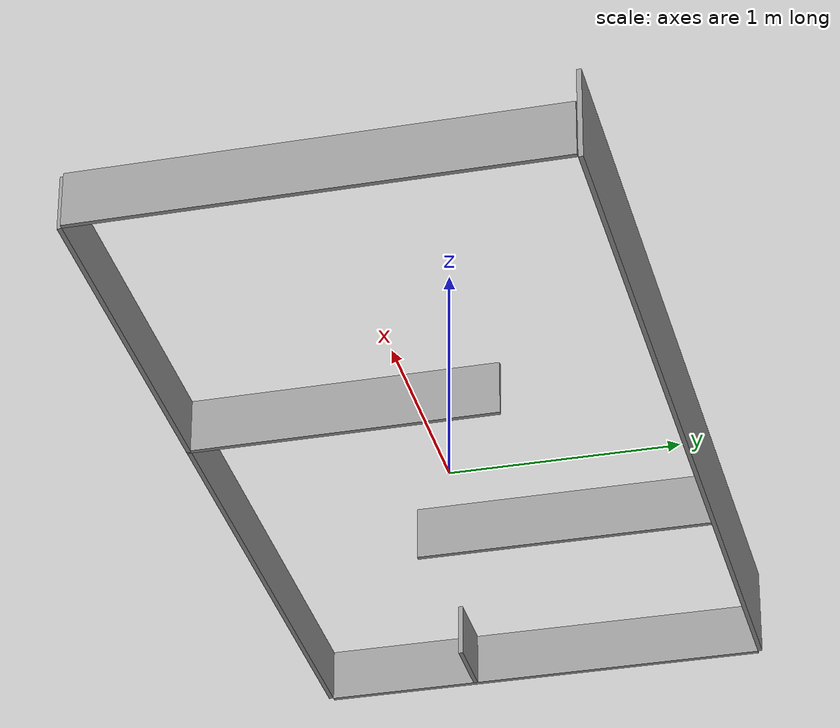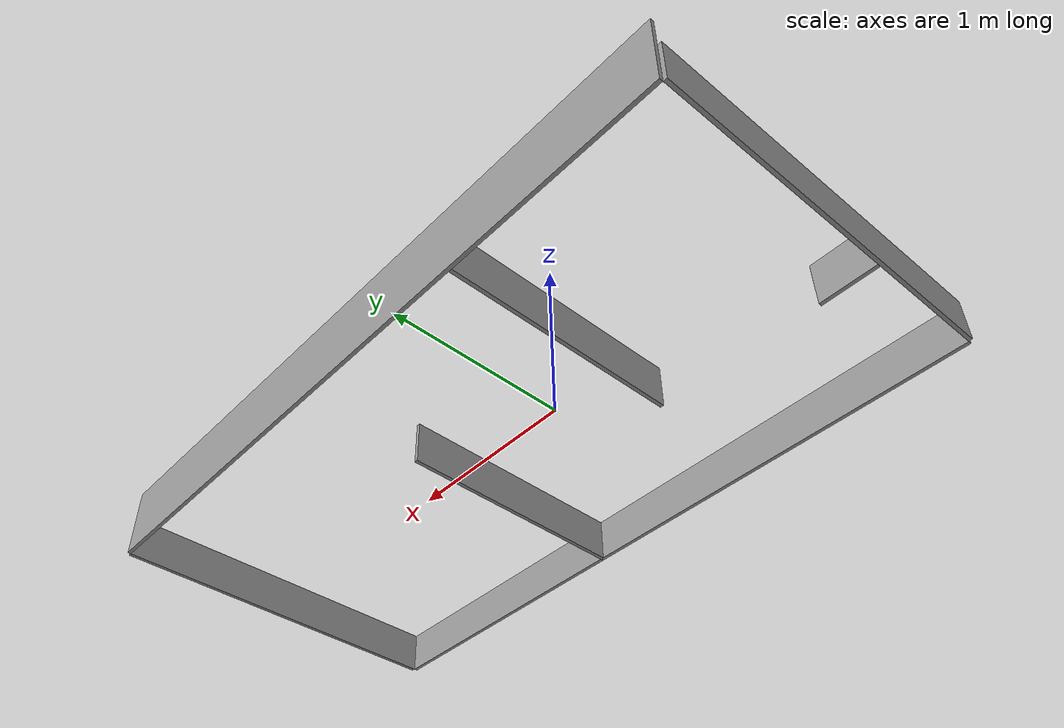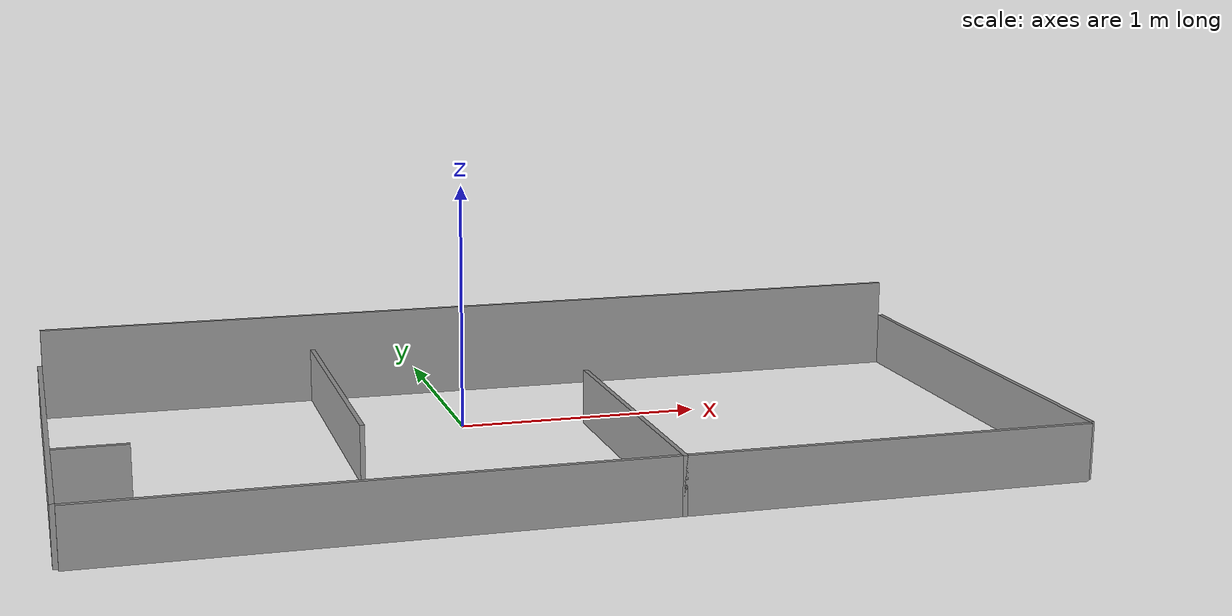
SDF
<?xml version='1.0'?>
<sdf version='1.6'>
  <model name='performance-environment'>
    <link name='link_2'>
      <pose frame=''>0.335714 -0.964286 -0.011429 0 -0 0</pose>
      <inertial>
        <mass>1</mass>
        <inertia>
          <ixx>0.166667</ixx>
          <ixy>0</ixy>
          <ixz>0</ixz>
          <iyy>0.166667</iyy>
          <iyz>0</iyz>
          <izz>0.166667</izz>
        </inertia>
        <pose frame=''>0 0 0 0 -0 0</pose>
      </inertial>
      <gravity>1</gravity>
      <self_collide>0</self_collide>
      <kinematic>0</kinematic>
      <visual name='visual'>
        <pose frame=''>0 0 0 0 -0 0</pose>
        <geometry>
          <box>
            <size>4 0.02 0.24</size>
          </box>
        </geometry>
        <material>
          <lighting>1</lighting>
          <script>
            <uri>file://media/materials/scripts/gazebo.material</uri>
            <name>Gazebo/Grey</name>
          </script>
          <shader type='pixel'>
            <normal_map>__default__</normal_map>
          </shader>
          <ambient>0.3 0.3 0.3 1</ambient>
          <diffuse>0.7 0.7 0.7 1</diffuse>
          <specular>0.01 0.01 0.01 1</specular>
          <emissive>0 0 0 1</emissive>
        </material>
        <transparency>0</transparency>
        <cast_shadows>1</cast_shadows>
      </visual>
      <collision name='collision'>
        <laser_retro>0</laser_retro>
        <max_contacts>10</max_contacts>
        <pose frame=''>0 0 0 0 -0 0</pose>
        <geometry>
          <box>
            <size>4 0.02 0.24</size>
          </box>
        </geometry>
        <surface>
          <friction>
            <ode>
              <mu>1</mu>
              <mu2>1</mu2>
              <fdir1>0 0 0</fdir1>
              <slip1>0</slip1>
              <slip2>0</slip2>
            </ode>
            <torsional>
              <coefficient>1</coefficient>
              <patch_radius>0</patch_radius>
              <surface_radius>0</surface_radius>
              <use_patch_radius>1</use_patch_radius>
              <ode>
                <slip>0</slip>
              </ode>
            </torsional>
          </friction>
          <bounce>
            <restitution_coefficient>0</restitution_coefficient>
            <threshold>1e+06</threshold>
          </bounce>
          <contact>
            <collide_without_contact>0</collide_without_contact>
            <collide_without_contact_bitmask>1</collide_without_contact_bitmask>
            <collide_bitmask>1</collide_bitmask>
            <ode>
              <soft_cfm>0</soft_cfm>
              <soft_erp>0.2</soft_erp>
              <kp>1e+13</kp>
              <kd>1</kd>
              <max_vel>0.01</max_vel>
              <min_depth>0</min_depth>
            </ode>
            <bullet>
              <split_impulse>1</split_impulse>
              <split_impulse_penetration_threshold>-0.01</split_impulse_penetration_threshold>
              <soft_cfm>0</soft_cfm>
              <soft_erp>0.2</soft_erp>
              <kp>1e+13</kp>
              <kd>1</kd>
            </bullet>
          </contact>
        </surface>
      </collision>
    </link>
    <link name='link_2_clone'>
      <pose frame=''>0.335714 1.05571 0.068571 0 -0 0</pose>
      <inertial>
        <mass>1</mass>
        <inertia>
          <ixx>0.166667</ixx>
          <ixy>0</ixy>
          <ixz>0</ixz>
          <iyy>0.166667</iyy>
          <iyz>0</iyz>
          <izz>0.166667</izz>
        </inertia>
        <pose frame=''>0 0 0 0 -0 0</pose>
      </inertial>
      <self_collide>0</self_collide>
      <kinematic>0</kinematic>
      <gravity>1</gravity>
      <visual name='visual'>
        <pose frame=''>0 0 0 0 -0 0</pose>
        <geometry>
          <box>
            <size>4 0.02 0.4</size>
          </box>
        </geometry>
        <material>
          <lighting>1</lighting>
          <script>
            <uri>file://media/materials/scripts/gazebo.material</uri>
            <name>Gazebo/Grey</name>
          </script>
          <shader type='pixel'>
            <normal_map>__default__</normal_map>
          </shader>
          <ambient>0.3 0.3 0.3 1</ambient>
          <diffuse>0.7 0.7 0.7 1</diffuse>
          <specular>0.01 0.01 0.01 1</specular>
          <emissive>0 0 0 1</emissive>
        </material>
        <transparency>0</transparency>
        <cast_shadows>1</cast_shadows>
      </visual>
      <collision name='collision'>
        <laser_retro>0</laser_retro>
        <max_contacts>10</max_contacts>
        <pose frame=''>0 0 0 0 -0 0</pose>
        <geometry>
          <box>
            <size>4 0.02 0.4</size>
          </box>
        </geometry>
        <surface>
          <friction>
            <ode>
              <mu>1</mu>
              <mu2>1</mu2>
              <fdir1>0 0 0</fdir1>
              <slip1>0</slip1>
              <slip2>0</slip2>
            </ode>
            <torsional>
              <coefficient>1</coefficient>
              <patch_radius>0</patch_radius>
              <surface_radius>0</surface_radius>
              <use_patch_radius>1</use_patch_radius>
              <ode>
                <slip>0</slip>
              </ode>
            </torsional>
          </friction>
          <bounce>
            <restitution_coefficient>0</restitution_coefficient>
            <threshold>1e+06</threshold>
          </bounce>
          <contact>
            <collide_without_contact>0</collide_without_contact>
            <collide_without_contact_bitmask>1</collide_without_contact_bitmask>
            <collide_bitmask>1</collide_bitmask>
            <ode>
              <soft_cfm>0</soft_cfm>
              <soft_erp>0.2</soft_erp>
              <kp>1e+13</kp>
              <kd>1</kd>
              <max_vel>0.01</max_vel>
              <min_depth>0</min_depth>
            </ode>
            <bullet>
              <split_impulse>1</split_impulse>
              <split_impulse_penetration_threshold>-0.01</split_impulse_penetration_threshold>
              <soft_cfm>0</soft_cfm>
              <soft_erp>0.2</soft_erp>
              <kp>1e+13</kp>
              <kd>1</kd>
            </bullet>
          </contact>
        </surface>
      </collision>
    </link>
    <link name='link_3'>
      <pose frame=''>-1.67429 0.045714 -0.011429 0 -0 0</pose>
      <inertial>
        <mass>1</mass>
        <inertia>
          <ixx>0.166667</ixx>
          <ixy>0</ixy>
          <ixz>0</ixz>
          <iyy>0.166667</iyy>
          <iyz>0</iyz>
          <izz>0.166667</izz>
        </inertia>
        <pose frame=''>0 0 0 0 -0 0</pose>
      </inertial>
      <gravity>1</gravity>
      <self_collide>0</self_collide>
      <kinematic>0</kinematic>
      <visual name='visual'>
        <pose frame=''>0 0 0 0 -0 0</pose>
        <geometry>
          <box>
            <size>0.02 2 0.24</size>
          </box>
        </geometry>
        <material>
          <lighting>1</lighting>
          <script>
            <uri>file://media/materials/scripts/gazebo.material</uri>
            <name>Gazebo/Grey</name>
          </script>
          <shader type='pixel'>
            <normal_map>__default__</normal_map>
          </shader>
          <ambient>0.3 0.3 0.3 1</ambient>
          <diffuse>0.7 0.7 0.7 1</diffuse>
          <specular>0.01 0.01 0.01 1</specular>
          <emissive>0 0 0 1</emissive>
        </material>
        <transparency>0</transparency>
        <cast_shadows>1</cast_shadows>
      </visual>
      <collision name='collision'>
        <laser_retro>0</laser_retro>
        <max_contacts>10</max_contacts>
        <pose frame=''>0 0 0 0 -0 0</pose>
        <geometry>
          <box>
            <size>0.02 2 0.24</size>
          </box>
        </geometry>
        <surface>
          <friction>
            <ode>
              <mu>1</mu>
              <mu2>1</mu2>
              <fdir1>0 0 0</fdir1>
              <slip1>0</slip1>
              <slip2>0</slip2>
            </ode>
            <torsional>
              <coefficient>1</coefficient>
              <patch_radius>0</patch_radius>
              <surface_radius>0</surface_radius>
              <use_patch_radius>1</use_patch_radius>
              <ode>
                <slip>0</slip>
              </ode>
            </torsional>
          </friction>
          <bounce>
            <restitution_coefficient>0</restitution_coefficient>
            <threshold>1e+06</threshold>
          </bounce>
          <contact>
            <collide_without_contact>0</collide_without_contact>
            <collide_without_contact_bitmask>1</collide_without_contact_bitmask>
            <collide_bitmask>1</collide_bitmask>
            <ode>
              <soft_cfm>0</soft_cfm>
              <soft_erp>0.2</soft_erp>
              <kp>1e+13</kp>
              <kd>1</kd>
              <max_vel>0.01</max_vel>
              <min_depth>0</min_depth>
            </ode>
            <bullet>
              <split_impulse>1</split_impulse>
              <split_impulse_penetration_threshold>-0.01</split_impulse_penetration_threshold>
              <soft_cfm>0</soft_cfm>
              <soft_erp>0.2</soft_erp>
              <kp>1e+13</kp>
              <kd>1</kd>
            </bullet>
          </contact>
        </surface>
      </collision>
    </link>
    <link name='link_3_clone'>
      <pose frame=''>2.34572 0.045714 -0.011429 0 -0 0</pose>
      <inertial>
        <mass>1</mass>
        <inertia>
          <ixx>0.166667</ixx>
          <ixy>0</ixy>
          <ixz>0</ixz>
          <iyy>0.166667</iyy>
          <iyz>0</iyz>
          <izz>0.166667</izz>
        </inertia>
        <pose frame=''>0 0 0 0 -0 0</pose>
      </inertial>
      <self_collide>0</self_collide>
      <kinematic>0</kinematic>
      <gravity>1</gravity>
      <visual name='visual'>
        <pose frame=''>0 0 0 0 -0 0</pose>
        <geometry>
          <box>
            <size>0.02 2 0.24</size>
          </box>
        </geometry>
        <material>
          <lighting>1</lighting>
          <script>
            <uri>file://media/materials/scripts/gazebo.material</uri>
            <name>Gazebo/Grey</name>
          </script>
          <shader type='pixel'>
            <normal_map>__default__</normal_map>
          </shader>
          <ambient>0.3 0.3 0.3 1</ambient>
          <diffuse>0.7 0.7 0.7 1</diffuse>
          <specular>0.01 0.01 0.01 1</specular>
          <emissive>0 0 0 1</emissive>
        </material>
        <transparency>0</transparency>
        <cast_shadows>1</cast_shadows>
      </visual>
      <collision name='collision'>
        <laser_retro>0</laser_retro>
        <max_contacts>10</max_contacts>
        <pose frame=''>0 0 0 0 -0 0</pose>
        <geometry>
          <box>
            <size>0.02 2 0.24</size>
          </box>
        </geometry>
        <surface>
          <friction>
            <ode>
              <mu>1</mu>
              <mu2>1</mu2>
              <fdir1>0 0 0</fdir1>
              <slip1>0</slip1>
              <slip2>0</slip2>
            </ode>
            <torsional>
              <coefficient>1</coefficient>
              <patch_radius>0</patch_radius>
              <surface_radius>0</surface_radius>
              <use_patch_radius>1</use_patch_radius>
              <ode>
                <slip>0</slip>
              </ode>
            </torsional>
          </friction>
          <bounce>
            <restitution_coefficient>0</restitution_coefficient>
            <threshold>1e+06</threshold>
          </bounce>
          <contact>
            <collide_without_contact>0</collide_without_contact>
            <collide_without_contact_bitmask>1</collide_without_contact_bitmask>
            <collide_bitmask>1</collide_bitmask>
            <ode>
              <soft_cfm>0</soft_cfm>
              <soft_erp>0.2</soft_erp>
              <kp>1e+13</kp>
              <kd>1</kd>
              <max_vel>0.01</max_vel>
              <min_depth>0</min_depth>
            </ode>
            <bullet>
              <split_impulse>1</split_impulse>
              <split_impulse_penetration_threshold>-0.01</split_impulse_penetration_threshold>
              <soft_cfm>0</soft_cfm>
              <soft_erp>0.2</soft_erp>
              <kp>1e+13</kp>
              <kd>1</kd>
            </bullet>
          </contact>
        </surface>
      </collision>
    </link>
    <link name='link_3_clone_0'>
      <pose frame=''>-1.51429 -0.274286 -0.011429 0 -0 1.5707</pose>
      <inertial>
        <mass>1</mass>
        <inertia>
          <ixx>0.166667</ixx>
          <ixy>0</ixy>
          <ixz>0</ixz>
          <iyy>0.166667</iyy>
          <iyz>0</iyz>
          <izz>0.166667</izz>
        </inertia>
        <pose frame=''>0 0 0 0 -0 0</pose>
      </inertial>
      <self_collide>0</self_collide>
      <kinematic>0</kinematic>
      <gravity>1</gravity>
      <visual name='visual'>
        <pose frame=''>0 0 0 0 -0 0</pose>
        <geometry>
          <box>
            <size>0.02 0.3 0.24</size>
          </box>
        </geometry>
        <material>
          <lighting>1</lighting>
          <script>
            <uri>file://media/materials/scripts/gazebo.material</uri>
            <name>Gazebo/Grey</name>
          </script>
          <shader type='pixel'>
            <normal_map>__default__</normal_map>
          </shader>
          <ambient>0.3 0.3 0.3 1</ambient>
          <diffuse>0.7 0.7 0.7 1</diffuse>
          <specular>0.01 0.01 0.01 1</specular>
          <emissive>0 0 0 1</emissive>
        </material>
        <transparency>0</transparency>
        <cast_shadows>1</cast_shadows>
      </visual>
      <collision name='collision'>
        <laser_retro>0</laser_retro>
        <max_contacts>10</max_contacts>
        <pose frame=''>0 0 0 0 -0 0</pose>
        <geometry>
          <box>
            <size>0.02 0.3 0.24</size>
          </box>
        </geometry>
        <surface>
          <friction>
            <ode>
              <mu>1</mu>
              <mu2>1</mu2>
              <fdir1>0 0 0</fdir1>
              <slip1>0</slip1>
              <slip2>0</slip2>
            </ode>
            <torsional>
              <coefficient>1</coefficient>
              <patch_radius>0</patch_radius>
              <surface_radius>0</surface_radius>
              <use_patch_radius>1</use_patch_radius>
              <ode>
                <slip>0</slip>
              </ode>
            </torsional>
          </friction>
          <bounce>
            <restitution_coefficient>0</restitution_coefficient>
            <threshold>1e+06</threshold>
          </bounce>
          <contact>
            <collide_without_contact>0</collide_without_contact>
            <collide_without_contact_bitmask>1</collide_without_contact_bitmask>
            <collide_bitmask>1</collide_bitmask>
            <ode>
              <soft_cfm>0</soft_cfm>
              <soft_erp>0.2</soft_erp>
              <kp>1e+13</kp>
              <kd>1</kd>
              <max_vel>0.01</max_vel>
              <min_depth>0</min_depth>
            </ode>
            <bullet>
              <split_impulse>1</split_impulse>
              <split_impulse_penetration_threshold>-0.01</split_impulse_penetration_threshold>
              <soft_cfm>0</soft_cfm>
              <soft_erp>0.2</soft_erp>
              <kp>1e+13</kp>
              <kd>1</kd>
            </bullet>
          </contact>
        </surface>
      </collision>
    </link>
    <link name='link_3_clone_0_clone'>
      <pose frame=''>-0.464286 0.395714 -0.011429 0 -0 0</pose>
      <inertial>
        <mass>1</mass>
        <inertia>
          <ixx>0.166667</ixx>
          <ixy>0</ixy>
          <ixz>0</ixz>
          <iyy>0.166667</iyy>
          <iyz>0</iyz>
          <izz>0.166667</izz>
        </inertia>
        <pose frame=''>0 0 0 0 -0 0</pose>
      </inertial>
      <self_collide>0</self_collide>
      <kinematic>0</kinematic>
      <gravity>1</gravity>
      <visual name='visual'>
        <pose frame=''>0 0 0 0 -0 0</pose>
        <geometry>
          <box>
            <size>0.02 1.3 0.24</size>
          </box>
        </geometry>
        <material>
          <lighting>1</lighting>
          <script>
            <uri>file://media/materials/scripts/gazebo.material</uri>
            <name>Gazebo/Grey</name>
          </script>
          <shader type='pixel'>
            <normal_map>__default__</normal_map>
          </shader>
          <ambient>0.3 0.3 0.3 1</ambient>
          <diffuse>0.7 0.7 0.7 1</diffuse>
          <specular>0.01 0.01 0.01 1</specular>
          <emissive>0 0 0 1</emissive>
        </material>
        <transparency>0</transparency>
        <cast_shadows>1</cast_shadows>
      </visual>
      <collision name='collision'>
        <laser_retro>0</laser_retro>
        <max_contacts>10</max_contacts>
        <pose frame=''>0 0 0 0 -0 0</pose>
        <geometry>
          <box>
            <size>0.02 1.3 0.24</size>
          </box>
        </geometry>
        <surface>
          <friction>
            <ode>
              <mu>1</mu>
              <mu2>1</mu2>
              <fdir1>0 0 0</fdir1>
              <slip1>0</slip1>
              <slip2>0</slip2>
            </ode>
            <torsional>
              <coefficient>1</coefficient>
              <patch_radius>0</patch_radius>
              <surface_radius>0</surface_radius>
              <use_patch_radius>1</use_patch_radius>
              <ode>
                <slip>0</slip>
              </ode>
            </torsional>
          </friction>
          <bounce>
            <restitution_coefficient>0</restitution_coefficient>
            <threshold>1e+06</threshold>
          </bounce>
          <contact>
            <collide_without_contact>0</collide_without_contact>
            <collide_without_contact_bitmask>1</collide_without_contact_bitmask>
            <collide_bitmask>1</collide_bitmask>
            <ode>
              <soft_cfm>0</soft_cfm>
              <soft_erp>0.2</soft_erp>
              <kp>1e+13</kp>
              <kd>1</kd>
              <max_vel>0.01</max_vel>
              <min_depth>0</min_depth>
            </ode>
            <bullet>
              <split_impulse>1</split_impulse>
              <split_impulse_penetration_threshold>-0.01</split_impulse_penetration_threshold>
              <soft_cfm>0</soft_cfm>
              <soft_erp>0.2</soft_erp>
              <kp>1e+13</kp>
              <kd>1</kd>
            </bullet>
          </contact>
        </surface>
      </collision>
    </link>
    <link name='link_3_clone_0_clone_1'>
      <pose frame=''>0.635714 -0.304286 -0.011429 0 -0 0</pose>
      <inertial>
        <mass>1</mass>
        <inertia>
          <ixx>0.166667</ixx>
          <ixy>0</ixy>
          <ixz>0</ixz>
          <iyy>0.166667</iyy>
          <iyz>0</iyz>
          <izz>0.166667</izz>
        </inertia>
        <pose frame=''>0 0 0 0 -0 0</pose>
      </inertial>
      <self_collide>0</self_collide>
      <kinematic>0</kinematic>
      <gravity>1</gravity>
      <visual name='visual'>
        <pose frame=''>0 0 0 0 -0 0</pose>
        <geometry>
          <box>
            <size>0.02 1.34 0.24</size>
          </box>
        </geometry>
        <material>
          <lighting>1</lighting>
          <script>
            <uri>file://media/materials/scripts/gazebo.material</uri>
            <name>Gazebo/Grey</name>
          </script>
          <shader type='pixel'>
            <normal_map>__default__</normal_map>
          </shader>
          <ambient>0.3 0.3 0.3 1</ambient>
          <diffuse>0.7 0.7 0.7 1</diffuse>
          <specular>0.01 0.01 0.01 1</specular>
          <emissive>0 0 0 1</emissive>
        </material>
        <transparency>0</transparency>
        <cast_shadows>1</cast_shadows>
      </visual>
      <collision name='collision'>
        <laser_retro>0</laser_retro>
        <max_contacts>10</max_contacts>
        <pose frame=''>0 0 0 0 -0 0</pose>
        <geometry>
          <box>
            <size>0.02 1.34 0.24</size>
          </box>
        </geometry>
        <surface>
          <friction>
            <ode>
              <mu>1</mu>
              <mu2>1</mu2>
              <fdir1>0 0 0</fdir1>
              <slip1>0</slip1>
              <slip2>0</slip2>
            </ode>
            <torsional>
              <coefficient>1</coefficient>
              <patch_radius>0</patch_radius>
              <surface_radius>0</surface_radius>
              <use_patch_radius>1</use_patch_radius>
              <ode>
                <slip>0</slip>
              </ode>
            </torsional>
          </friction>
          <bounce>
            <restitution_coefficient>0</restitution_coefficient>
            <threshold>1e+06</threshold>
          </bounce>
          <contact>
            <collide_without_contact>0</collide_without_contact>
            <collide_without_contact_bitmask>1</collide_without_contact_bitmask>
            <collide_bitmask>1</collide_bitmask>
            <ode>
              <soft_cfm>0</soft_cfm>
              <soft_erp>0.2</soft_erp>
              <kp>1e+13</kp>
              <kd>1</kd>
              <max_vel>0.01</max_vel>
              <min_depth>0</min_depth>
            </ode>
            <bullet>
              <split_impulse>1</split_impulse>
              <split_impulse_penetration_threshold>-0.01</split_impulse_penetration_threshold>
              <soft_cfm>0</soft_cfm>
              <soft_erp>0.2</soft_erp>
              <kp>1e+13</kp>
              <kd>1</kd>
            </bullet>
          </contact>
        </surface>
      </collision>
    </link>
    <joint name='link_2_clone_JOINT_10' type='fixed'>
      <parent>link_2_clone</parent>
      <child>link_3_clone</child>
      <pose frame=''>0 0 0 0 -0 0</pose>
      <physics>
        <ode>
          <limit>
            <cfm>0</cfm>
            <erp>0.2</erp>
          </limit>
          <suspension>
            <cfm>0</cfm>
            <erp>0.2</erp>
          </suspension>
        </ode>
      </physics>
    </joint>
    <joint name='link_2_clone_JOINT_11' type='fixed'>
      <parent>link_2_clone</parent>
      <child>link_3_clone_0</child>
      <pose frame=''>0 0 0 0 -0 0</pose>
      <physics>
        <ode>
          <limit>
            <cfm>0</cfm>
            <erp>0.2</erp>
          </limit>
          <suspension>
            <cfm>0</cfm>
            <erp>0.2</erp>
          </suspension>
        </ode>
      </physics>
    </joint>
    <joint name='link_2_clone_JOINT_6' type='fixed'>
      <parent>link_2_clone</parent>
      <child>link_3_clone_0_clone</child>
      <pose frame=''>0 0 0 0 -0 0</pose>
      <physics>
        <ode>
          <limit>
            <cfm>0</cfm>
            <erp>0.2</erp>
          </limit>
          <suspension>
            <cfm>0</cfm>
            <erp>0.2</erp>
          </suspension>
        </ode>
      </physics>
    </joint>
    <joint name='link_2_clone_JOINT_7' type='fixed'>
      <parent>link_2_clone</parent>
      <child>link_3</child>
      <pose frame=''>0 0 0 0 -0 0</pose>
      <physics>
        <ode>
          <limit>
            <cfm>0</cfm>
            <erp>0.2</erp>
          </limit>
          <suspension>
            <cfm>0</cfm>
            <erp>0.2</erp>
          </suspension>
        </ode>
      </physics>
    </joint>
    <joint name='link_2_clone_JOINT_8' type='fixed'>
      <parent>link_2_clone</parent>
      <child>link_2</child>
      <pose frame=''>0 0 0 0 -0 0</pose>
      <physics>
        <ode>
          <limit>
            <cfm>0</cfm>
            <erp>0.2</erp>
          </limit>
          <suspension>
            <cfm>0</cfm>
            <erp>0.2</erp>
          </suspension>
        </ode>
      </physics>
    </joint>
    <joint name='link_2_clone_JOINT_9' type='fixed'>
      <parent>link_2_clone</parent>
      <child>link_3_clone_0_clone_1</child>
      <pose frame=''>0 0 0 0 -0 0</pose>
      <physics>
        <ode>
          <limit>
            <cfm>0</cfm>
            <erp>0.2</erp>
          </limit>
          <suspension>
            <cfm>0</cfm>
            <erp>0.2</erp>
          </suspension>
        </ode>
      </physics>
    </joint>
    <static>1</static>
    <allow_auto_disable>1</allow_auto_disable>
  </model>
</sdf>
